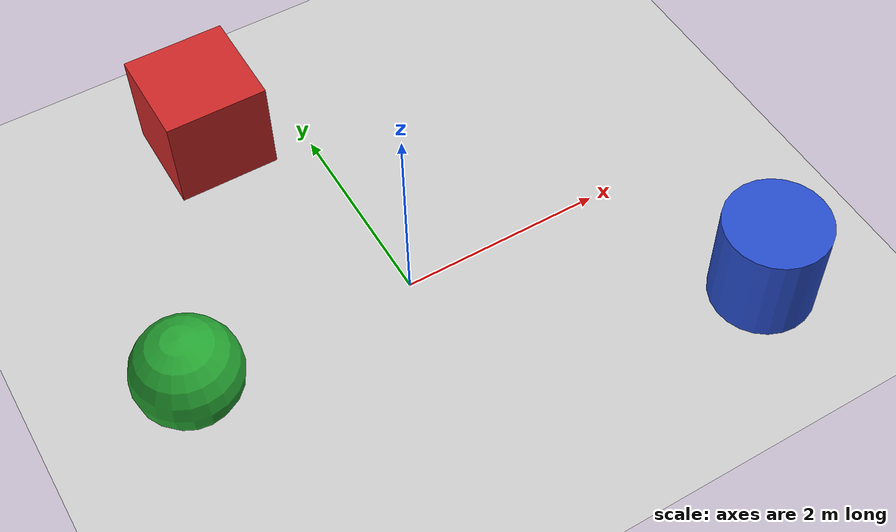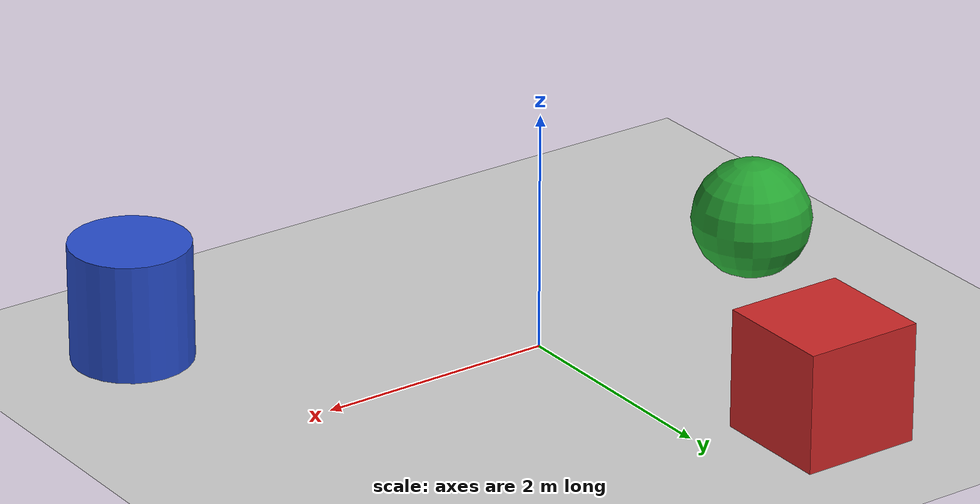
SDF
<?xml version="1.0"?>
<sdf version="1.4">
  <world name="default">
       <light name='sun' type='directional'>
      <cast_shadows>1</cast_shadows>
      <pose frame=''>0 0 10 0 -0 0</pose>
      <diffuse>0.8 0.8 0.8 1</diffuse>
      <specular>0.2 0.2 0.2 1</specular>
      <attenuation>
        <range>1000</range>
        <constant>0.9</constant>
        <linear>0.01</linear>
        <quadratic>0.001</quadratic>
      </attenuation>
      <direction>-0.5 0.1 -0.9</direction>
    </light>

    <include>
      <uri>model://ground_plane</uri>
    </include>

    <model name='unit_cylinder'>
     <static>1</static>
      <pose frame=''>2.74807 -1.70739 0.5 0 -0 0</pose>
      <link name='link'>
        <collision name='collision'>
          <geometry>
            <cylinder>
              <radius>0.5</radius>
              <length>1</length>
            </cylinder>
          </geometry>
        </collision>
        <visual name='visual'>
          <geometry>
            <cylinder>
              <radius>0.5</radius>
              <length>1</length>
            </cylinder>
          </geometry>
          <material>
            <script>
              <uri>file://media/materials/scripts/gazebo.material</uri>
              <name>Gazebo/Blue</name>
            </script>
          </material>
        </visual>
      </link>
    </model>

        <model name='unit_box'>
        <static>1</static>
      <pose frame=''>-0.88171 2.49992 0.5 0 -0 0</pose>
      <link name='link'>
        <collision name='collision'>
          <geometry>
            <box>
              <size>1 1 1</size>
            </box>
          </geometry>
        </collision>
        <visual name='visual'>
          <geometry>
            <box>
              <size>1 1 1</size>
            </box>
          </geometry>
          <material>
            <script>
              <uri>file://media/materials/scripts/gazebo.material</uri>
              <name>Gazebo/Red</name>
            </script>
          </material>
        </visual>
      </link>
    </model>

    <model name='unit_sphere'>
    <static>1</static>
      <pose frame=''>-2.21543 -0.120439 0.5 0 -0 0</pose>
      <link name='link'>
        <collision name='collision'>
          <geometry>
            <sphere>
              <radius>0.5</radius>
            </sphere>
          </geometry>
        </collision>
        <visual name='visual'>
          <geometry>
            <sphere>
              <radius>0.5</radius>
            </sphere>
          </geometry>
                    <material>
            <script>
              <uri>file://media/materials/scripts/gazebo.material</uri>
              <name>Gazebo/Green</name>
            </script>
          </material>
        </visual>
      </link>
    </model>

  </world>
</sdf>
